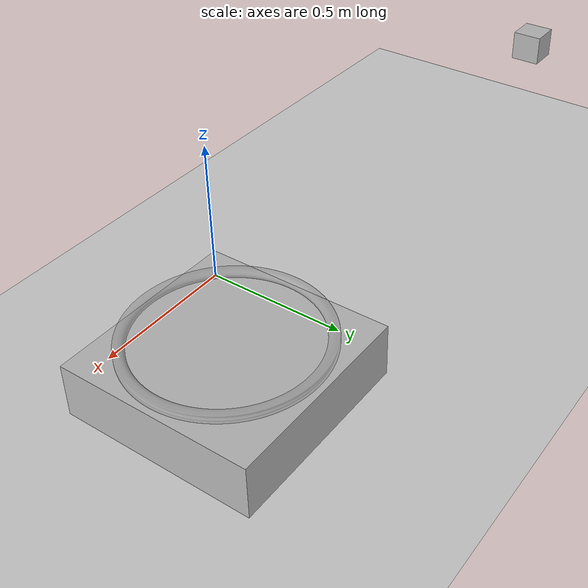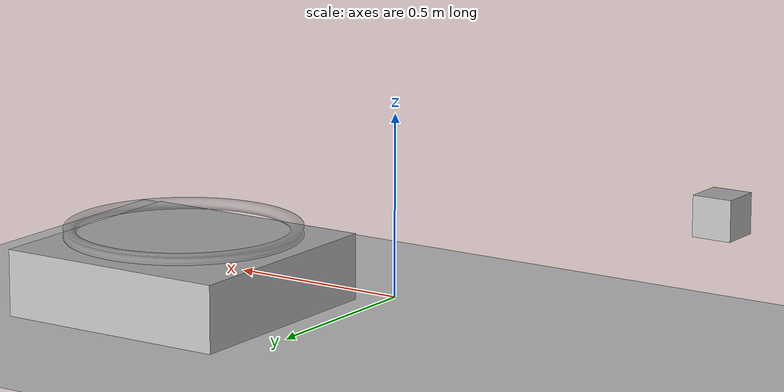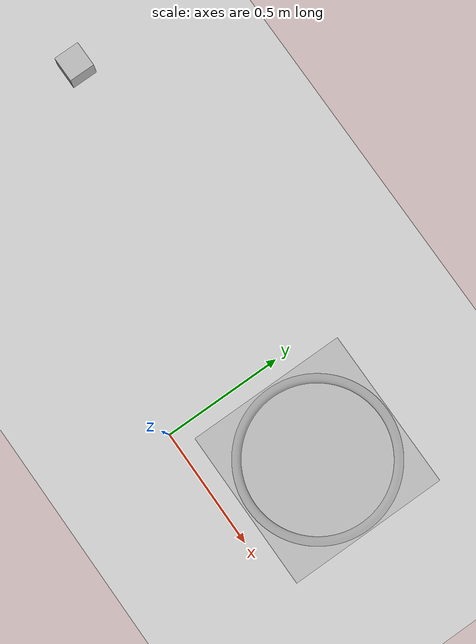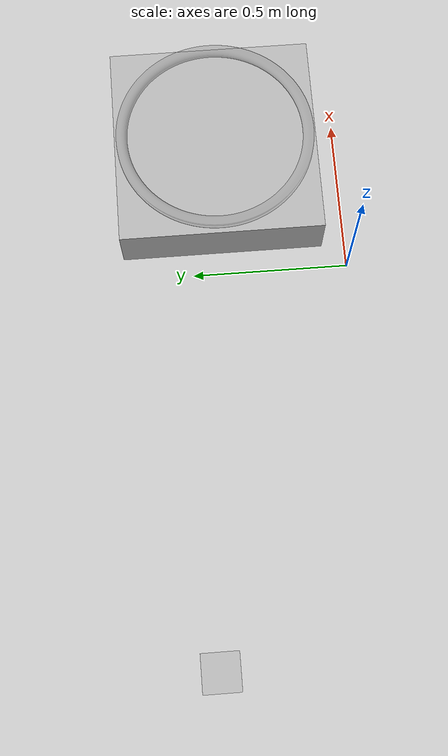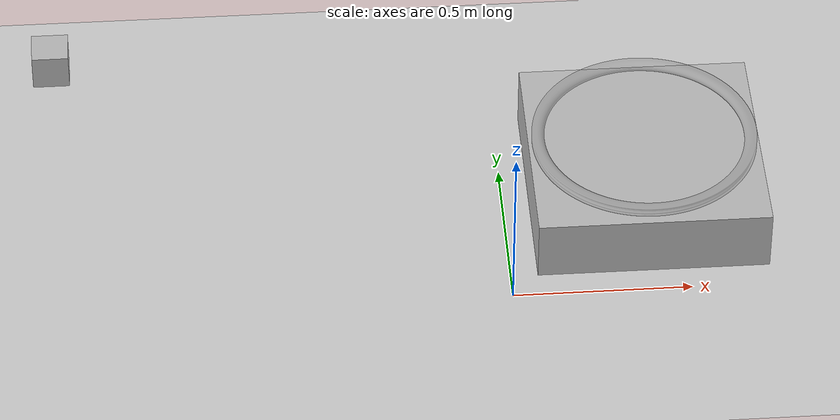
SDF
<?xml version="1.0" ?>
<sdf version="1.5">
  <world name="default">
    <include>
      <uri>model://ground_plane</uri>
    </include>
    <include>
      <uri>model://sun</uri>
    </include>

    <model name="ar35">
      <static>true</static>
      <pose>0.4 0.4 0.21 0 1.57 0</pose>
      <include>
        <uri>model://ar35</uri>
      </include>
    </model>

    <model name="box">
      <pose>0.4 0.4 0.09 0 0 0</pose>
      <link name="link">
        <collision name="collision">
          <geometry>
            <box>
              <size>0.65 0.65 0.18</size>
            </box>
          </geometry>
        </collision>
        <visual name="visual">
          <geometry>
            <box>
              <size>0.65 0.65 0.18</size>
            </box>
          </geometry>
        </visual>
      </link>

    </model>

    <model name="camera_model">
      <static>true</static>
      <pose>-1.25 0.5 0.5 0 0 0</pose>
      <link name="world_camera_link">
        <visual name="visual">
          <geometry>
            <box>
              <size>0.1 0.1 0.1</size>
            </box>
          </geometry>
        </visual>
        <!-- Regular camera, to make sure strict rate is only applied to the sensor intended -->
        <sensor name="camera_sensor_regular" type="camera">
          <camera>
            <horizontal_fov>1.0472</horizontal_fov>
            <image>
              <width>320</width>
              <height>240</height>
            </image>
          </camera>
          <plugin name="camera_controller" filename="libgazebo_ros_camera.so">
            <updateRate>0.0</updateRate>
            <cameraName>sidecam</cameraName>
            <imageTopicName>image_raw</imageTopicName>
            <cameraInfoTopicName>camera_info</cameraInfoTopicName>
            <frameName>camera_link</frameName>
            <hackBaseline>0.07</hackBaseline>
            <distortionK1>0.0</distortionK1>
            <distortionK2>0.0</distortionK2>
            <distortionK3>0.0</distortionK3>
            <distortionT1>0.0</distortionT1>
            <distortionT2>0.0</distortionT2>
          </plugin>
          <always_on>1</always_on>
          <update_rate>30</update_rate>
          <visualize>true</visualize>
        </sensor>
      </link>

      <joint name="world_camera_joint" type="fixed">
        <child>world_camera_link</child>
        <parent>world</parent>
      </joint>

    </model>

  </world>
</sdf>

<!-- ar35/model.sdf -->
<sdf version='1.6'>
  <model name='ar35'>
    <link name='ring'>
      <pose>0 0 0 0 0 0</pose>
      <self_collide>0</self_collide>
      <inertial>
        <mass>1</mass>
        <pose frame=''>0 0 0 0 0 0</pose>
        <inertia>
          <ixx>1</ixx>
          <ixy>0</ixy>
          <ixz>0</ixz>
          <iyy>1</iyy>
          <iyz>0</iyz>
          <izz>1</izz>
        </inertia>
      </inertial>
      <visual name='ring_visual'>
        <geometry>
          <mesh>
            <uri>model://ar35/meshes/AR35.stl</uri>
            <scale>0.001 0.001 0.001</scale>
          </mesh>
        </geometry>
        <pose frame=''>0 0 0 0 0 0</pose>
        <material>
          <script>
            <name>Gazebo/GreyTransparent</name>
            <uri>__default__</uri>
          </script>
          <shader type='pixel'>
            <normal_map>__default__</normal_map>
          </shader>
          <ambient>0.5 0.5 0.5 1</ambient>
          <diffuse>0.5 0.5 0.5 1</diffuse>
          <specular>0 0 0 1</specular>
          <emissive>0 0 0 1</emissive>
        </material>
        <transparency>0</transparency>
        <cast_shadows>1</cast_shadows>
      </visual>
      <collision name='ring_collision'>
        <laser_retro>0</laser_retro>
        <max_contacts>10</max_contacts>
        <pose>0 0 0 0 0 0</pose>
        <geometry>

          <mesh>
            <uri>model://ar35/meshes/AR35.stl</uri>
            <scale>0.001 0.001 0.001</scale>
          </mesh>
        </geometry>
        <surface>
          <friction>
            <ode>
              <mu>1</mu>
              <mu2>1</mu2>
              <fdir1>0 0 0</fdir1>
              <slip1>0.1</slip1>
              <slip2>0.1</slip2>
            </ode>
            <torsional>
              <coefficient>1</coefficient>
              <patch_radius>0</patch_radius>
              <surface_radius>0</surface_radius>
              <use_patch_radius>1</use_patch_radius>
              <ode>
                <slip>0</slip>
              </ode>
            </torsional>
          </friction>
          <bounce>
            <restitution_coefficient>0</restitution_coefficient>
            <threshold>1e+06</threshold>
          </bounce>
          <contact>
            <collide_without_contact>0</collide_without_contact>
            <collide_without_contact_bitmask>1</collide_without_contact_bitmask>
            <collide_bitmask>1</collide_bitmask>
            <ode>
              <soft_cfm>0</soft_cfm>
              <soft_erp>0.2</soft_erp>
              <kp>1e+13</kp>
              <kd>1</kd>
              <max_vel>0.01</max_vel>
              <min_depth>0</min_depth>
            </ode>
            <bullet>
              <split_impulse>1</split_impulse>
              <split_impulse_penetration_threshold>-0.01</split_impulse_penetration_threshold>
              <soft_cfm>0</soft_cfm>
              <soft_erp>0.2</soft_erp>
              <kp>1e+13</kp>
              <kd>1</kd>
            </bullet>
          </contact>
        </surface>
      </collision>
    </link>
  </model>
</sdf>
